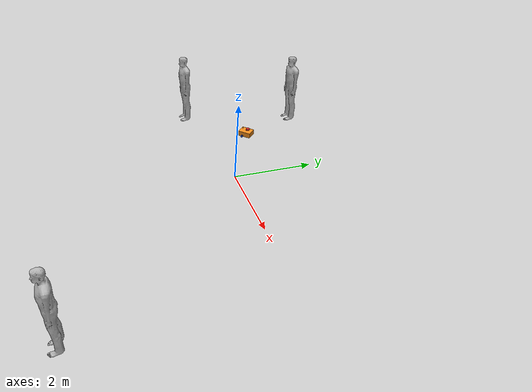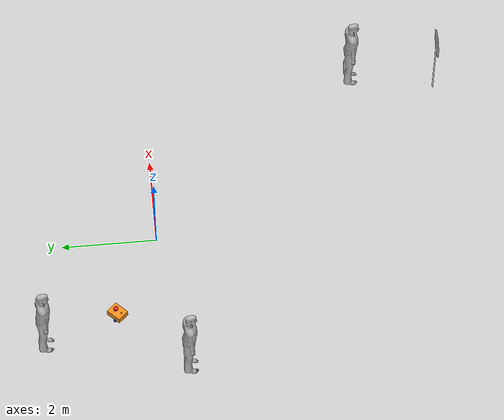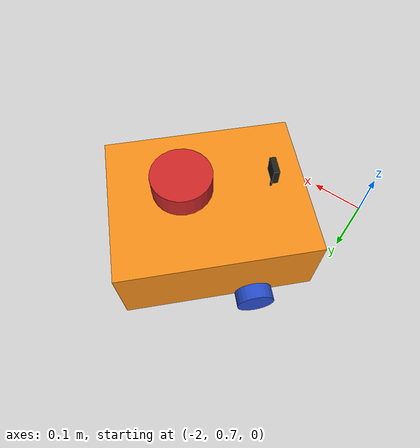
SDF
<sdf version="1.7">
 <world name="default">
  <light name="sun" type="directional">
   <pose>0 0 10 0 -0 0</pose>
   <diffuse>0.8 0.8 0.8 1</diffuse>
   <specular>0.2 0.2 0.2 1</specular>
   <attenuation>
    <range>1000</range>
    <constant>0.9</constant>
    <linear>0.01</linear>
    <quadratic>0.001</quadratic>
   </attenuation>
   <direction>-0.5 0.1 -0.9</direction>
   <spot><inner_angle>0</inner_angle><outer_angle>0</outer_angle><falloff>0</falloff></spot>
  </light>
  <model name="ground_plane">
   <static>1</static>
   <link name="link">
    <collision name="collision">
     <geometry><plane><normal>0 0 1</normal><size>100 100</size></plane></geometry>
     <surface>
      <contact><collide_bitmask>65535</collide_bitmask></contact>
      <friction><ode><mu>100</mu><mu2>50</mu2></ode></friction>
     </surface>
    </collision>
    <visual name="visual">
     <cast_shadows>0</cast_shadows>
     <geometry><plane><normal>0 0 1</normal><size>100 100</size></plane></geometry>
     <material>
      <script><uri>file://media/materials/scripts/gazebo.material</uri><name>Gazebo/Grey</name></script>
     </material>
    </visual>
   </link>
  </model>
  <gravity>0 0 -9.8</gravity>
  <magnetic_field>6e-06 2.3e-05 -4.2e-05</magnetic_field>
  <atmosphere type="adiabatic"/>
  <physics type="ode">
   <max_step_size>0.001</max_step_size>
   <real_time_factor>1</real_time_factor>
   <real_time_update_rate>1000</real_time_update_rate>
  </physics>
  <scene><ambient>0.4 0.4 0.4 1</ambient><background>0.7 0.7 0.7 1</background><shadows>1</shadows></scene>
  <audio><device>default</device></audio>
  <spherical_coordinates>
   <surface_model>EARTH_WGS84</surface_model>
   <latitude_deg>0</latitude_deg>
   <longitude_deg>0</longitude_deg>
   <elevation>0</elevation>
   <heading_deg>0</heading_deg>
  </spherical_coordinates>
  <model name="my_bot">
   <link name="base_link">
    <inertial>
     <pose>-0.13125 0 0.000385 0 -0 0</pose>
     <mass>2.6</mass>
     <inertia>
      <ixx>0.00973599</ixx>
      <ixy>0</ixy>
      <ixz>-0.0036015</ixz>
      <iyy>0.0150101</iyy>
      <iyz>0</iyz>
      <izz>0.0113311</izz>
     </inertia>
    </inertial>
    <collision name="base_link_fixed_joint_lump__chassis_collision">
     <pose>-0.0585 0 0.059 0 -0 0</pose>
     <geometry><box><size>0.335 0.265 0.138</size></box></geometry>
    </collision>
    <collision name="base_link_fixed_joint_lump__caster_wheel_collision_1">
     <pose>-0.151 0 -0.023 0 -0 0</pose>
     <geometry><sphere><radius>0.01</radius></sphere></geometry>
     <surface><friction><ode><mu>0.001</mu><mu2>0.001</mu2></ode></friction></surface>
    </collision>
    <collision name="base_link_fixed_joint_lump__laser_frame_collision_2">
     <pose>-0.1 0 0.175 0 -0 0</pose>
     <geometry><cylinder><length>0.04</length><radius>0.05</radius></cylinder></geometry>
    </collision>
    <visual name="base_link_fixed_joint_lump__chassis_visual">
     <pose>-0.0585 0 0.059 0 -0 0</pose>
     <geometry><box><size>0.335 0.265 0.138</size></box></geometry>
     <material>
      <script><name>Gazebo/Orange</name><uri>file://media/materials/scripts/gazebo.material</uri></script>
     </material>
    </visual>
    <visual name="base_link_fixed_joint_lump__camera_link_visual_1">
     <pose>0.05 0 0.171 0 -0 0</pose>
     <geometry><box><size>0.01 0.03 0.03</size></box></geometry>
     <material>
      <script><name>Gazebo/Black</name><uri>file://media/materials/scripts/gazebo.material</uri></script>
     </material>
    </visual>
    <visual name="base_link_fixed_joint_lump__camera_link_visual_2">
     <pose>0.05 0 0.121 0 -0 0</pose>
     <geometry><cylinder><length>0.1</length><radius>0.002</radius></cylinder></geometry>
     <material>
      <script><name>Gazebo/Black</name><uri>file://media/materials/scripts/gazebo.material</uri></script>
     </material>
    </visual>
    <visual name="base_link_fixed_joint_lump__caster_wheel_visual_3">
     <pose>-0.151 0 -0.023 0 -0 0</pose>
     <geometry><sphere><radius>0.01</radius></sphere></geometry>
     <material>
      <script><name>Gazebo/White</name><uri>file://media/materials/scripts/gazebo.material</uri></script>
     </material>
    </visual>
    <visual name="base_link_fixed_joint_lump__laser_frame_visual_4">
     <pose>-0.1 0 0.175 0 -0 0</pose>
     <geometry><cylinder><length>0.04</length><radius>0.05</radius></cylinder></geometry>
     <material>
      <script><name>Gazebo/Red</name><uri>file://media/materials/scripts/gazebo.material</uri></script>
     </material>
    </visual>
    <sensor name="camera" type="camera">
     <visualize>1</visualize>
     <update_rate>10</update_rate>
     <camera>
      <horizontal_fov>1.089</horizontal_fov>
      <image><format>R8G8B8</format><width>640</width><height>480</height></image>
      <clip><near>0.05</near><far>8</far></clip>
     </camera>
     <plugin name="camera_controller" filename="libgazebo_ros_camera.so">
      <frame_name>camera_link_optical</frame_name>
     </plugin>
     <pose>0.05 0 0.171 0 -0 0</pose>
    </sensor>
    <sensor name="laser" type="ray">
     <visualize>1</visualize>
     <update_rate>10</update_rate>
     <ray>
      <scan>
       <horizontal>
        <samples>360</samples>
        <resolution>1</resolution>
        <min_angle>-3.14</min_angle>
        <max_angle>3.14</max_angle>
       </horizontal>
       <vertical><samples>1</samples><min_angle>0</min_angle><max_angle>0</max_angle></vertical>
      </scan>
      <range><min>0.3</min><max>12</max></range>
     </ray>
     <plugin name="laser_controller" filename="libgazebo_ros_ray_sensor.so">
      <ros><argument>~/out:=scan</argument></ros>
      <output_type>sensor_msgs/LaserScan</output_type>
      <frame_name>laser_frame</frame_name>
     </plugin>
     <pose>-0.1 0 0.175 0 -0 0</pose>
    </sensor>
   </link>
   <joint name="left_wheel_joint" type="revolute">
    <pose relative_to="base_link">0 0.1485 0 -1.5708 0 0</pose>
    <parent>base_link</parent>
    <child>left_wheel</child>
    <axis>
     <xyz>0 0 1</xyz>
     <limit><lower>-1e+16</lower><upper>1e+16</upper></limit>
     <dynamics><spring_reference>0</spring_reference><spring_stiffness>0</spring_stiffness></dynamics>
    </axis>
   </joint>
   <link name="left_wheel">
    <pose relative_to="left_wheel_joint">0 0 0 0 -0 0</pose>
    <inertial>
     <mass>0.05</mass>
     <inertia>
      <ixx>1.64292e-05</ixx>
      <ixy>0</ixy>
      <ixz>0</ixz>
      <iyy>1.64292e-05</iyy>
      <iyz>0</iyz>
      <izz>2.7225e-05</izz>
     </inertia>
    </inertial>
    <collision name="left_wheel_collision">
     <geometry><sphere><radius>0.033</radius></sphere></geometry>
    </collision>
    <visual name="left_wheel_visual">
     <geometry><cylinder><length>0.026</length><radius>0.033</radius></cylinder></geometry>
     <material>
      <script><name>Gazebo/Blue</name><uri>file://media/materials/scripts/gazebo.material</uri></script>
     </material>
    </visual>
   </link>
   <joint name="right_wheel_joint" type="revolute">
    <pose relative_to="base_link">0 -0.1485 0 1.5708 -0 0</pose>
    <parent>base_link</parent>
    <child>right_wheel</child>
    <axis>
     <xyz>0 0 -1</xyz>
     <limit><lower>-1e+16</lower><upper>1e+16</upper></limit>
     <dynamics><spring_reference>0</spring_reference><spring_stiffness>0</spring_stiffness></dynamics>
    </axis>
   </joint>
   <link name="right_wheel">
    <pose relative_to="right_wheel_joint">0 0 0 0 -0 0</pose>
    <inertial>
     <mass>0.05</mass>
     <inertia>
      <ixx>1.64292e-05</ixx>
      <ixy>0</ixy>
      <ixz>0</ixz>
      <iyy>1.64292e-05</iyy>
      <iyz>0</iyz>
      <izz>2.7225e-05</izz>
     </inertia>
    </inertial>
    <collision name="right_wheel_collision">
     <geometry><sphere><radius>0.033</radius></sphere></geometry>
    </collision>
    <visual name="right_wheel_visual">
     <geometry><cylinder><length>0.026</length><radius>0.033</radius></cylinder></geometry>
     <material>
      <script><name>Gazebo/Blue</name><uri>file://media/materials/scripts/gazebo.material</uri></script>
     </material>
    </visual>
   </link>
   <static>0</static>
   <plugin name="diff_drive" filename="libgazebo_ros_diff_drive.so">
    <left_joint>left_wheel_joint</left_joint>
    <right_joint>right_wheel_joint</right_joint>
    <wheel_separation>0.297</wheel_separation>
    <wheel_diameter>0.066</wheel_diameter>
    <max_wheel_torque>200</max_wheel_torque>
    <max_wheel_acceleration>10.0</max_wheel_acceleration>
    <odometry_frame>odom</odometry_frame>
    <robot_base_frame>base_link</robot_base_frame>
    <publish_odom>1</publish_odom>
    <publish_odom_tf>1</publish_odom_tf>
    <publish_wheel_tf>1</publish_wheel_tf>
   </plugin>
   <pose>-1.82348 0.891452 0.033 0 0 -2.36427</pose>
  </model>
  <model name="person_standing">
   <link name="link">
    <inertial>
     <pose>0 -0.1 0.95 0 -0 0</pose>
     <mass>80</mass>
     <inertia><ixx>24.88</ixx><ixy>0</ixy><ixz>0</ixz><iyy>25.73</iyy><iyz>0</iyz><izz>2.48</izz></inertia>
    </inertial>
    <collision name="bottom">
     <pose>0 -0.1 0.01 0 -0 0</pose>
     <geometry><box><size>0.5 0.35 0.02</size></box></geometry>
    </collision>
    <collision name="person">
     <pose>0 0 0.02 0.04 -0 0</pose>
     <geometry><mesh><uri>model://person_standing/meshes/standing.dae</uri></mesh></geometry>
    </collision>
    <visual name="visual">
     <pose>0 0 0.02 0.04 -0 0</pose>
     <geometry><mesh><uri>model://person_standing/meshes/standing.dae</uri></mesh></geometry>
    </visual>
   </link>
   <pose>-338.759 -13.8963 -0 1e-06 -1e-06 2.2e-05</pose>
  </model>
  <model name="person_standing_clone">
   <link name="link">
    <inertial>
     <pose>0 -0.1 0.95 0 -0 0</pose>
     <mass>80</mass>
     <inertia><ixx>24.88</ixx><ixy>0</ixy><ixz>0</ixz><iyy>25.73</iyy><iyz>0</iyz><izz>2.48</izz></inertia>
    </inertial>
    <collision name="bottom">
     <pose>0 -0.1 0.01 0 -0 0</pose>
     <geometry><box><size>0.5 0.35 0.02</size></box></geometry>
    </collision>
    <collision name="person">
     <pose>0 0 0.02 0.04 -0 0</pose>
     <geometry><mesh><uri>model://person_standing/meshes/standing.dae</uri></mesh></geometry>
    </collision>
    <visual name="visual">
     <pose>0 0 0.02 0.04 -0 0</pose>
     <geometry><mesh><uri>model://person_standing/meshes/standing.dae</uri></mesh></geometry>
    </visual>
   </link>
   <pose>-3.16659 -0.390472 -0 0 1e-06 0.000415</pose>
  </model>
  <model name="person_standing_clone_0">
   <link name="link">
    <inertial>
     <pose>0 -0.1 0.95 0 -0 0</pose>
     <mass>80</mass>
     <inertia><ixx>24.88</ixx><ixy>0</ixy><ixz>0</ixz><iyy>25.73</iyy><iyz>0</iyz><izz>2.48</izz></inertia>
    </inertial>
    <collision name="bottom">
     <pose>0 -0.1 0.01 0 -0 0</pose>
     <geometry><box><size>0.5 0.35 0.02</size></box></geometry>
    </collision>
    <collision name="person">
     <pose>0 0 0.02 0.04 -0 0</pose>
     <geometry><mesh><uri>model://person_standing/meshes/standing.dae</uri></mesh></geometry>
    </collision>
    <visual name="visual">
     <pose>0 0 0.02 0.04 -0 0</pose>
     <geometry><mesh><uri>model://person_standing/meshes/standing.dae</uri></mesh></geometry>
    </visual>
   </link>
   <pose>-2.39744 2.52719 -0 1e-06 1e-06 -0.000369</pose>
  </model>
  <model name="Stop Sign">
   <static>1</static>
   <link name="link">
    <collision name="collision">
     <geometry><mesh><uri>model://stop_sign/meshes/stop_sign.dae</uri></mesh></geometry>
    </collision>
    <visual name="visual">
     <geometry><mesh><uri>model://stop_sign/meshes/stop_sign.dae</uri></mesh></geometry>
     <material>
      <script>
       <uri>model://stop_sign/materials/scripts</uri>
       <uri>model://stop_sign/materials/textures</uri>
       <name>StopSign/Diffuse</name>
      </script>
     </material>
    </visual>
   </link>
   <pose>3.5088 -6.33625 0 0 -0 0</pose>
  </model>
  <model name="person_standing_clone_clone">
   <link name="link">
    <inertial>
     <pose>0 -0.1 0.95 0 -0 0</pose>
     <mass>80</mass>
     <inertia><ixx>24.88</ixx><ixy>0</ixy><ixz>0</ixz><iyy>25.73</iyy><iyz>0</iyz><izz>2.48</izz></inertia>
    </inertial>
    <collision name="bottom">
     <pose>0 -0.1 0.01 0 -0 0</pose>
     <geometry><box><size>0.5 0.35 0.02</size></box></geometry>
    </collision>
    <collision name="person">
     <pose>0 0 0.02 0.04 -0 0</pose>
     <geometry><mesh><uri>model://person_standing/meshes/standing.dae</uri></mesh></geometry>
    </collision>
    <visual name="visual">
     <pose>0 0 0.02 0.04 -0 0</pose>
     <geometry><mesh><uri>model://person_standing/meshes/standing.dae</uri></mesh></geometry>
    </visual>
   </link>
   <pose>3.85847 -4.45657 -1e-06 -1e-06 1e-06 0.000667</pose>
  </model>
 </world>
</sdf>
